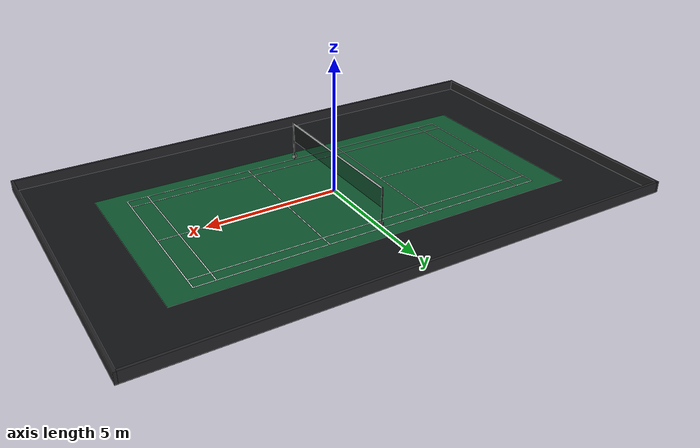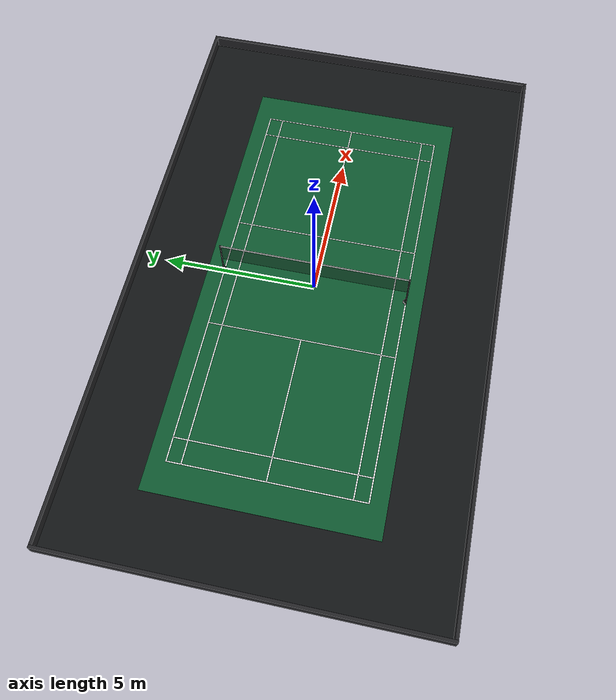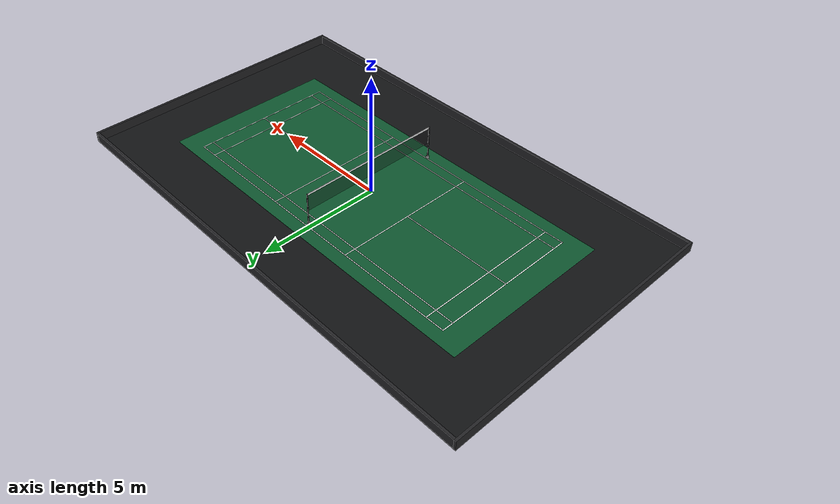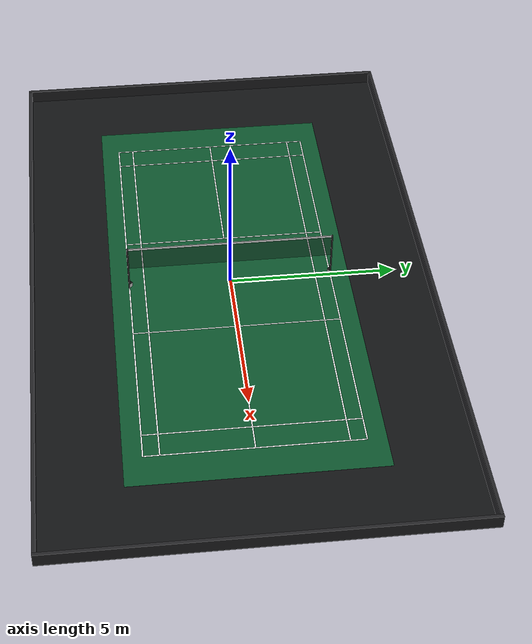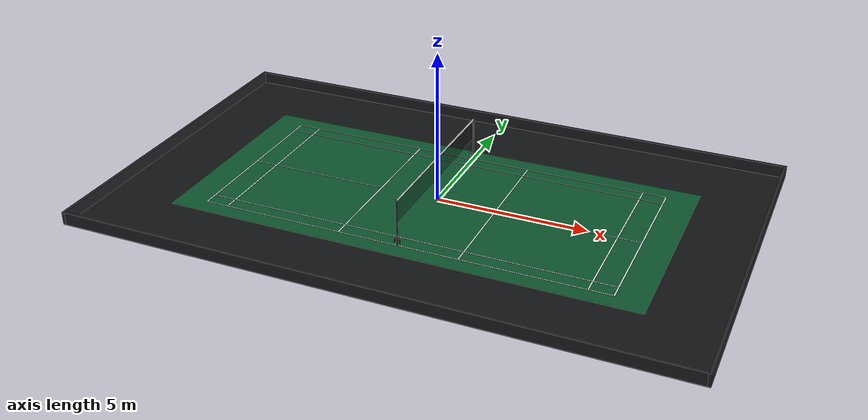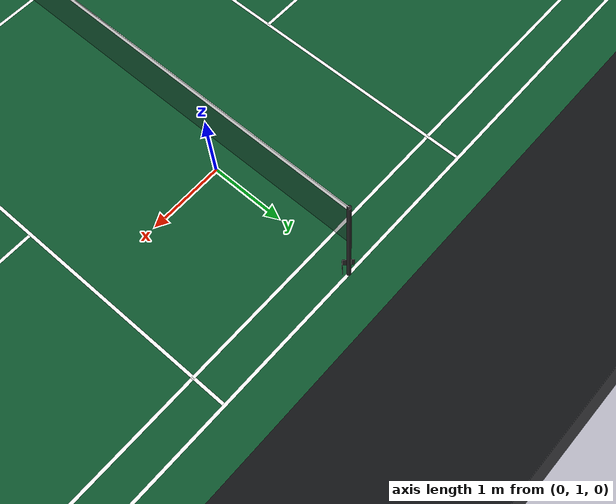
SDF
<?xml version="1.0" ?>
<sdf version="1.10">

  <world name="badminton_court">

    <!-- Physics -->
    <physics name="1ms" type="ignored">
      <max_step_size>0.001</max_step_size>
      <real_time_factor>1.0</real_time_factor>
    </physics>

    <!-- Geographic reference required by magnetometer -->
    <spherical_coordinates>
      <surface_model>EARTH_WGS84</surface_model>
      <world_frame_orientation>ENU</world_frame_orientation>

      <latitude_deg>10.0</latitude_deg>
      <longitude_deg>106.0</longitude_deg>

      <elevation>0.0</elevation>

      <!-- +X of the Gazebo world corresponds to East -->
      <heading_deg>0.0</heading_deg>
    </spherical_coordinates>

    <!-- Required Gazebo systems -->
    <plugin
      filename="gz-sim-physics-system"
      name="gz::sim::systems::Physics"/>

    <plugin
      filename="gz-sim-user-commands-system"
      name="gz::sim::systems::UserCommands"/>

    <plugin
      filename="gz-sim-scene-broadcaster-system"
      name="gz::sim::systems::SceneBroadcaster"/>

    <plugin
      filename="gz-sim-imu-system"
      name="gz::sim::systems::Imu"/>

    <plugin
      filename="gz-sim-sensors-system"
      name="gz::sim::systems::Sensors">

      <render_engine>ogre2</render_engine>

    </plugin>

    <plugin
      filename="gz-sim-magnetometer-system"
      name="gz::sim::systems::Magnetometer"/>

    <plugin filename="libshuttle_manager_system.so"
            name="scrobot_simulation::ShuttleManagerSystem">
      <robot_model>scrobot</robot_model>
      <update_rate>30.0</update_rate>
      <ground_truth_topic>/evaluation/shuttle_ground_truth_gz</ground_truth_topic>
      <collected_topic>/evaluation/shuttle_collected_gz</collected_topic>
      <collector_link>collector_link</collector_link>
      <enable_collection>true</enable_collection>

      <collector_offset_x>0.165</collector_offset_x>
      <collector_offset_y>0.0</collector_offset_y>
      <collector_offset_z>0.030</collector_offset_z>
      <collector_offset_roll>0.0</collector_offset_roll>
      <collector_offset_pitch>0.0</collector_offset_pitch>
      <collector_offset_yaw>0.0</collector_offset_yaw>

      <pickup_half_length>0.030</pickup_half_length>
      <pickup_half_width>0.150</pickup_half_width>
      <shuttle_center_offset_z>0.045</shuttle_center_offset_z>
    </plugin>

    <scene>
      <ambient>0.08 0.08 0.08 1</ambient>
      <background>0.025 0.030 0.035 1</background>
      <shadows>true</shadows>
    </scene>

    <light type="spot" name="court_light_left_1">
      <pose>-4.5 4.6 7.0 0 0 0</pose>
      <diffuse>0.95 0.95 0.92 1</diffuse>
      <specular>0.20 0.20 0.20 1</specular>
      <direction>0 -0.55 -0.84</direction>
      <attenuation><range>18</range><constant>0.45</constant><linear>0.015</linear><quadratic>0.001</quadratic></attenuation>
      <spot><inner_angle>0.70</inner_angle><outer_angle>1.20</outer_angle><falloff>0.80</falloff></spot>
      <cast_shadows>true</cast_shadows>
    </light>
    <light type="spot" name="court_light_left_2">
      <pose>0 4.6 7.0 0 0 0</pose>
      <diffuse>0.95 0.95 0.92 1</diffuse>
      <specular>0.20 0.20 0.20 1</specular>
      <direction>0 -0.55 -0.84</direction>
      <attenuation><range>18</range><constant>0.45</constant><linear>0.015</linear><quadratic>0.001</quadratic></attenuation>
      <spot><inner_angle>0.70</inner_angle><outer_angle>1.20</outer_angle><falloff>0.80</falloff></spot>
      <cast_shadows>true</cast_shadows>
    </light>
    <light type="spot" name="court_light_left_3">
      <pose>4.5 4.6 7.0 0 0 0</pose>
      <diffuse>0.95 0.95 0.92 1</diffuse>
      <specular>0.20 0.20 0.20 1</specular>
      <direction>0 -0.55 -0.84</direction>
      <attenuation><range>18</range><constant>0.45</constant><linear>0.015</linear><quadratic>0.001</quadratic></attenuation>
      <spot><inner_angle>0.70</inner_angle><outer_angle>1.20</outer_angle><falloff>0.80</falloff></spot>
      <cast_shadows>true</cast_shadows>
    </light>
    <light type="spot" name="court_light_right_1">
      <pose>-4.5 -4.6 7.0 0 0 0</pose>
      <diffuse>0.95 0.95 0.92 1</diffuse>
      <specular>0.20 0.20 0.20 1</specular>
      <direction>0 0.55 -0.84</direction>
      <attenuation><range>18</range><constant>0.45</constant><linear>0.015</linear><quadratic>0.001</quadratic></attenuation>
      <spot><inner_angle>0.70</inner_angle><outer_angle>1.20</outer_angle><falloff>0.80</falloff></spot>
      <cast_shadows>true</cast_shadows>
    </light>
    <light type="spot" name="court_light_right_2">
      <pose>0 -4.6 7.0 0 0 0</pose>
      <diffuse>0.95 0.95 0.92 1</diffuse>
      <specular>0.20 0.20 0.20 1</specular>
      <direction>0 0.55 -0.84</direction>
      <attenuation><range>18</range><constant>0.45</constant><linear>0.015</linear><quadratic>0.001</quadratic></attenuation>
      <spot><inner_angle>0.70</inner_angle><outer_angle>1.20</outer_angle><falloff>0.80</falloff></spot>
      <cast_shadows>true</cast_shadows>
    </light>
    <light type="spot" name="court_light_right_3">
      <pose>4.5 -4.6 7.0 0 0 0</pose>
      <diffuse>0.95 0.95 0.92 1</diffuse>
      <specular>0.20 0.20 0.20 1</specular>
      <direction>0 0.55 -0.84</direction>
      <attenuation><range>18</range><constant>0.45</constant><linear>0.015</linear><quadratic>0.001</quadratic></attenuation>
      <spot><inner_angle>0.70</inner_angle><outer_angle>1.20</outer_angle><falloff>0.80</falloff></spot>
      <cast_shadows>true</cast_shadows>
    </light>

    <model name="court_floor">
      <static>true</static>
      <link name="floor_link">
        <collision name="floor_collision">
          <geometry><box><size>20.0 12.0 0.02</size></box></geometry>
          <surface>
            <friction><ode><mu>1.0</mu><mu2>1.0</mu2></ode></friction>
          </surface>
        </collision>

        <visual name="venue_floor_visual">
          <!-- Keep the dark venue surface 2 mm below the court-mat surface.
               This removes coplanar black/green z-fighting in Ogre2. -->
          <pose>0 0 -0.001 0 0 0</pose>
          <geometry><box><size>20.0 12.0 0.018</size></box></geometry>
          <material>
            <ambient>0.055 0.060 0.065 1</ambient>
            <diffuse>0.075 0.080 0.085 1</diffuse>
            <specular>0.02 0.02 0.02 1</specular>
          </material>
        </visual>

        <visual name="badminton_mat_visual">
          <!-- Mat top surface is exactly z=0. Court lines start at z=0 and
               extend upward, so they render cleanly without z-fighting. -->
          <pose>0 0 0.009 0 0 0</pose>
          <geometry><box><size>15.4 7.2 0.002</size></box></geometry>
          <material>
            <ambient>0.045 0.265 0.145 1</ambient>
            <diffuse>0.055 0.345 0.185 1</diffuse>
            <specular>0.015 0.015 0.015 1</specular>
          </material>
        </visual>
      </link>
      <pose>0 0 -0.01 0 0 0</pose>
    </model>

    <model name="simulation_safety_boundary">
      <static>true</static>
      <link name="boundary_link">

        <collision name="wall_x_positive_collision">
          <pose>9.95 0 0.20 0 0 0</pose>
          <geometry><box><size>0.10 12.0 0.40</size></box></geometry>
        </collision>
        <visual name="wall_x_positive_visual">
          <pose>9.95 0 0.20 0 0 0</pose>
          <geometry><box><size>0.10 12.0 0.40</size></box></geometry>
          <material>
            <ambient>0.10 0.10 0.11 1</ambient>
            <diffuse>0.14 0.14 0.15 1</diffuse>
          </material>
        </visual>

        <collision name="wall_x_negative_collision">
          <pose>-9.95 0 0.20 0 0 0</pose>
          <geometry><box><size>0.10 12.0 0.40</size></box></geometry>
        </collision>
        <visual name="wall_x_negative_visual">
          <pose>-9.95 0 0.20 0 0 0</pose>
          <geometry><box><size>0.10 12.0 0.40</size></box></geometry>
          <material>
            <ambient>0.10 0.10 0.11 1</ambient>
            <diffuse>0.14 0.14 0.15 1</diffuse>
          </material>
        </visual>

        <collision name="wall_y_positive_collision">
          <pose>0 5.95 0.20 0 0 0</pose>
          <geometry><box><size>19.8 0.10 0.40</size></box></geometry>
        </collision>
        <visual name="wall_y_positive_visual">
          <pose>0 5.95 0.20 0 0 0</pose>
          <geometry><box><size>19.8 0.10 0.40</size></box></geometry>
          <material>
            <ambient>0.10 0.10 0.11 1</ambient>
            <diffuse>0.14 0.14 0.15 1</diffuse>
          </material>
        </visual>

        <collision name="wall_y_negative_collision">
          <pose>0 -5.95 0.20 0 0 0</pose>
          <geometry><box><size>19.8 0.10 0.40</size></box></geometry>
        </collision>
        <visual name="wall_y_negative_visual">
          <pose>0 -5.95 0.20 0 0 0</pose>
          <geometry><box><size>19.8 0.10 0.40</size></box></geometry>
          <material>
            <ambient>0.10 0.10 0.11 1</ambient>
            <diffuse>0.14 0.14 0.15 1</diffuse>
          </material>
        </visual>

      </link>
    </model>

    <model name="court_markings">

      <static>true</static>

      <link name="markings">

        <!-- Doubles sidelines: y = +/- 3.05                   -->

        <visual name="doubles_sideline_left">
          <pose>0 3.05 0.0005 0 0 0</pose>

          <geometry>
            <box>
              <size>13.44 0.04 0.001</size>
            </box>
          </geometry>

          <material>
            <ambient>1 1 1 1</ambient>
            <diffuse>1 1 1 1</diffuse>
          </material>
        </visual>

        <visual name="doubles_sideline_right">
          <pose>0 -3.05 0.0005 0 0 0</pose>

          <geometry>
            <box>
              <size>13.44 0.04 0.001</size>
            </box>
          </geometry>

          <material>
            <ambient>1 1 1 1</ambient>
            <diffuse>1 1 1 1</diffuse>
          </material>
        </visual>

        <!-- Singles sidelines: y = +/- 2.59                   -->

        <visual name="singles_sideline_left">
          <pose>0 2.59 0.0005 0 0 0</pose>

          <geometry>
            <box>
              <size>13.40 0.04 0.001</size>
            </box>
          </geometry>

          <material>
            <ambient>1 1 1 1</ambient>
            <diffuse>1 1 1 1</diffuse>
          </material>
        </visual>

        <visual name="singles_sideline_right">
          <pose>0 -2.59 0.0005 0 0 0</pose>

          <geometry>
            <box>
              <size>13.40 0.04 0.001</size>
            </box>
          </geometry>

          <material>
            <ambient>1 1 1 1</ambient>
            <diffuse>1 1 1 1</diffuse>
          </material>
        </visual>

        <!-- Back boundaries: x = +/- 6.70                     -->

        <visual name="baseline_positive">
          <pose>6.70 0 0.0005 0 0 0</pose>

          <geometry>
            <box>
              <size>0.04 6.14 0.001</size>
            </box>
          </geometry>

          <material>
            <ambient>1 1 1 1</ambient>
            <diffuse>1 1 1 1</diffuse>
          </material>
        </visual>

        <visual name="baseline_negative">
          <pose>-6.70 0 0.0005 0 0 0</pose>

          <geometry>
            <box>
              <size>0.04 6.14 0.001</size>
            </box>
          </geometry>

          <material>
            <ambient>1 1 1 1</ambient>
            <diffuse>1 1 1 1</diffuse>
          </material>
        </visual>

        <!-- Short service lines: +/-1.98 from net             -->

        <visual name="short_service_positive">
          <pose>1.98 0 0.0005 0 0 0</pose>

          <geometry>
            <box>
              <size>0.04 6.10 0.001</size>
            </box>
          </geometry>

          <material>
            <ambient>1 1 1 1</ambient>
            <diffuse>1 1 1 1</diffuse>
          </material>
        </visual>

        <visual name="short_service_negative">
          <pose>-1.98 0 0.0005 0 0 0</pose>

          <geometry>
            <box>
              <size>0.04 6.10 0.001</size>
            </box>
          </geometry>

          <material>
            <ambient>1 1 1 1</ambient>
            <diffuse>1 1 1 1</diffuse>
          </material>
        </visual>

        <!-- Doubles long service lines                        -->

        <visual name="long_service_positive">
          <pose>5.94 0 0.0005 0 0 0</pose>

          <geometry>
            <box>
              <size>0.04 6.10 0.001</size>
            </box>
          </geometry>

          <material>
            <ambient>1 1 1 1</ambient>
            <diffuse>1 1 1 1</diffuse>
          </material>
        </visual>

        <visual name="long_service_negative">
          <pose>-5.94 0 0.0005 0 0 0</pose>

          <geometry>
            <box>
              <size>0.04 6.10 0.001</size>
            </box>
          </geometry>

          <material>
            <ambient>1 1 1 1</ambient>
            <diffuse>1 1 1 1</diffuse>
          </material>
        </visual>

        <!-- Centre service lines                              -->
        <!-- midpoint between 1.98 and 6.70 = 4.34             -->
        <!-- length = 6.70 - 1.98 = 4.72                       -->

        <visual name="center_service_positive">
          <pose>4.34 0 0.0005 0 0 0</pose>

          <geometry>
            <box>
              <size>4.72 0.04 0.001</size>
            </box>
          </geometry>

          <material>
            <ambient>1 1 1 1</ambient>
            <diffuse>1 1 1 1</diffuse>
          </material>
        </visual>

        <visual name="center_service_negative">
          <pose>-4.34 0 0.0005 0 0 0</pose>

          <geometry>
            <box>
              <size>4.72 0.04 0.001</size>
            </box>
          </geometry>

          <material>
            <ambient>1 1 1 1</ambient>
            <diffuse>1 1 1 1</diffuse>
          </material>
        </visual>

      </link>

    </model>

    <model name="net_assembly">

      <static>true</static>

      <link name="net_link">

        <!-- LEFT POST                                         -->

        <collision name="left_post_collision">

          <pose>0 3.05 0.775 0 0 0</pose>

          <geometry>
            <cylinder>
              <radius>0.025</radius>
              <length>1.55</length>
            </cylinder>
          </geometry>

        </collision>

        <visual name="left_post_visual">

          <pose>0 3.05 0.775 0 0 0</pose>

          <geometry>
            <cylinder>
              <radius>0.025</radius>
              <length>1.55</length>
            </cylinder>
          </geometry>

          <material>
            <ambient>0.15 0.15 0.15 1</ambient>
            <diffuse>0.15 0.15 0.15 1</diffuse>
          </material>

        </visual>

        <!-- RIGHT POST                                        -->

        <collision name="right_post_collision">

          <pose>0 -3.05 0.775 0 0 0</pose>

          <geometry>
            <cylinder>
              <radius>0.025</radius>
              <length>1.55</length>
            </cylinder>
          </geometry>

        </collision>

        <visual name="right_post_visual">

          <pose>0 -3.05 0.775 0 0 0</pose>

          <geometry>
            <cylinder>
              <radius>0.025</radius>
              <length>1.55</length>
            </cylinder>
          </geometry>

          <material>
            <ambient>0.15 0.15 0.15 1</ambient>
            <diffuse>0.15 0.15 0.15 1</diffuse>
          </material>

        </visual>

        <!-- NET: VISUAL ONLY                                  -->

        <visual name="net_visual">

          <!-- Top = 1.55 m, depth = 0.76 m -->
          <pose>0 0 1.17 0 0 0</pose>

          <geometry>
            <box>
              <size>0.005 6.10 0.76</size>
            </box>
          </geometry>

          <material>
            <ambient>0.05 0.05 0.05 1</ambient>
            <diffuse>0.05 0.05 0.05 1</diffuse>
          </material>

          <transparency>0.65</transparency>

        </visual>

        <!-- White top tape -->

        <visual name="net_top_tape">

          <pose>0 0 1.5125 0 0 0</pose>

          <geometry>
            <box>
              <size>0.01 6.10 0.075</size>
            </box>
          </geometry>

          <material>
            <ambient>1 1 1 1</ambient>
            <diffuse>1 1 1 1</diffuse>
          </material>

        </visual>

      </link>

    </model>

    <include>

      <uri>
        model://court_apriltags
      </uri>

    </include>

  </world>

</sdf>

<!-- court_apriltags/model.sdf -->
<sdf version="1.9">
  <model name="court_apriltags">
    <static>true</static>

    <link name="tag_mount_0">
      <pose>0.053033009 2.996966991 0.150000000 0 0 -0.785398163</pose>
      <visual name="backing">
        <pose>-0.001750 0 0 0 0 0</pose>
        <geometry><box><size>0.003000 0.133333333 0.133333333</size></box></geometry>
        <material><ambient>0.15 0.15 0.15 1</ambient><diffuse>0.15 0.15 0.15 1</diffuse><specular>0 0 0 1</specular></material>
      </visual>
      <visual name="tag_texture"><geometry><mesh><uri>model://court_apriltags/meshes/tag_0.obj</uri></mesh></geometry></visual>
    </link>

    <link name="tag_mount_1">
      <pose>0.053033009 -2.996966991 0.150000000 0 0 0.785398163</pose>
      <visual name="backing">
        <pose>-0.001750 0 0 0 0 0</pose>
        <geometry><box><size>0.003000 0.133333333 0.133333333</size></box></geometry>
        <material><ambient>0.15 0.15 0.15 1</ambient><diffuse>0.15 0.15 0.15 1</diffuse><specular>0 0 0 1</specular></material>
      </visual>
      <visual name="tag_texture"><geometry><mesh><uri>model://court_apriltags/meshes/tag_1.obj</uri></mesh></geometry></visual>
    </link>

    <link name="tag_mount_2">
      <pose>-0.053033009 2.996966991 0.150000000 0 0 -2.356194490</pose>
      <visual name="backing">
        <pose>-0.001750 0 0 0 0 0</pose>
        <geometry><box><size>0.003000 0.133333333 0.133333333</size></box></geometry>
        <material><ambient>0.15 0.15 0.15 1</ambient><diffuse>0.15 0.15 0.15 1</diffuse><specular>0 0 0 1</specular></material>
      </visual>
      <visual name="tag_texture"><geometry><mesh><uri>model://court_apriltags/meshes/tag_2.obj</uri></mesh></geometry></visual>
    </link>

    <link name="tag_mount_3">
      <pose>-0.053033009 -2.996966991 0.150000000 0 0 2.356194490</pose>
      <visual name="backing">
        <pose>-0.001750 0 0 0 0 0</pose>
        <geometry><box><size>0.003000 0.133333333 0.133333333</size></box></geometry>
        <material><ambient>0.15 0.15 0.15 1</ambient><diffuse>0.15 0.15 0.15 1</diffuse><specular>0 0 0 1</specular></material>
      </visual>
      <visual name="tag_texture"><geometry><mesh><uri>model://court_apriltags/meshes/tag_3.obj</uri></mesh></geometry></visual>
    </link>

  </model>
</sdf>
